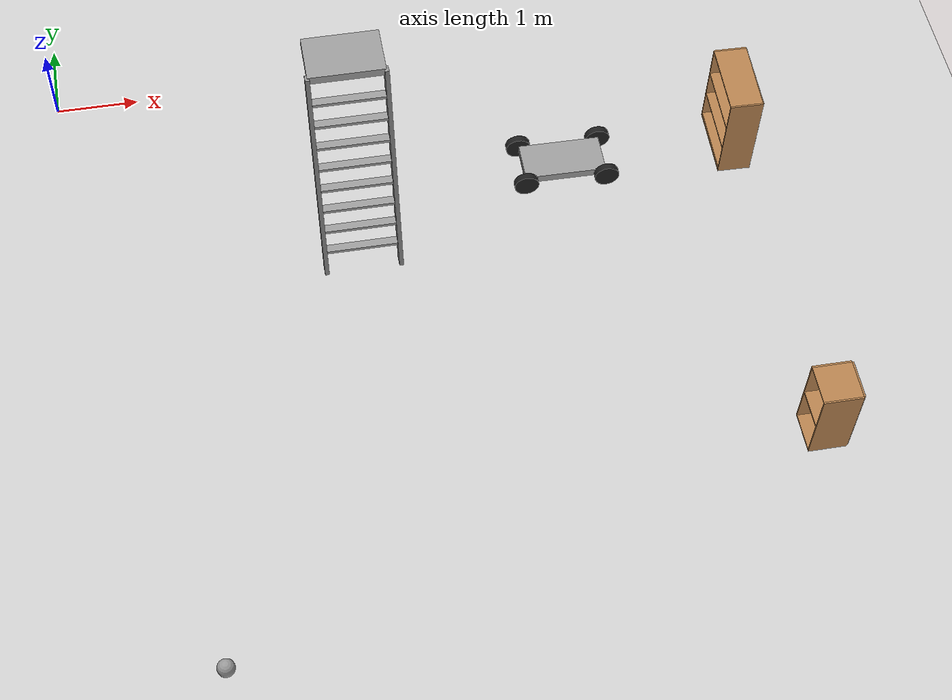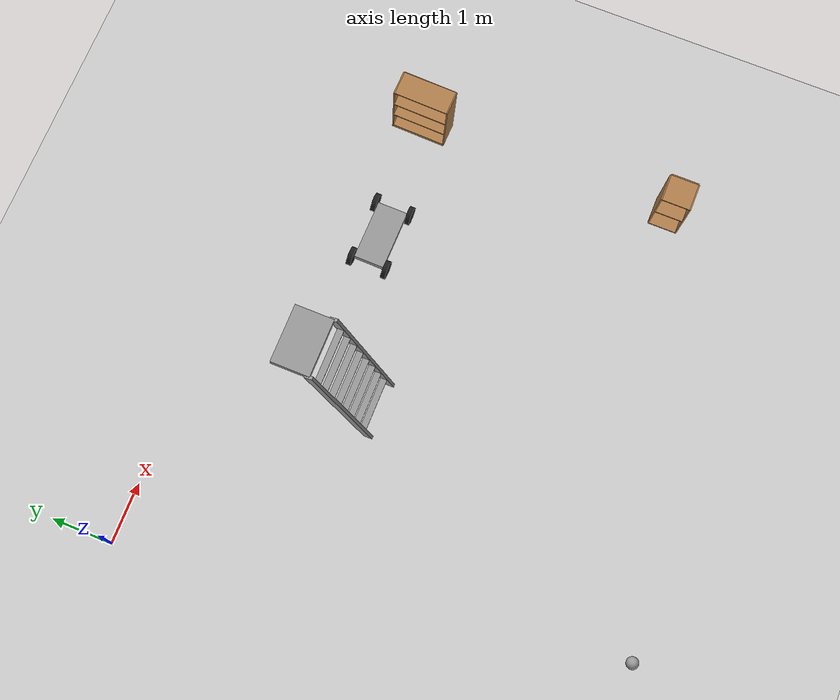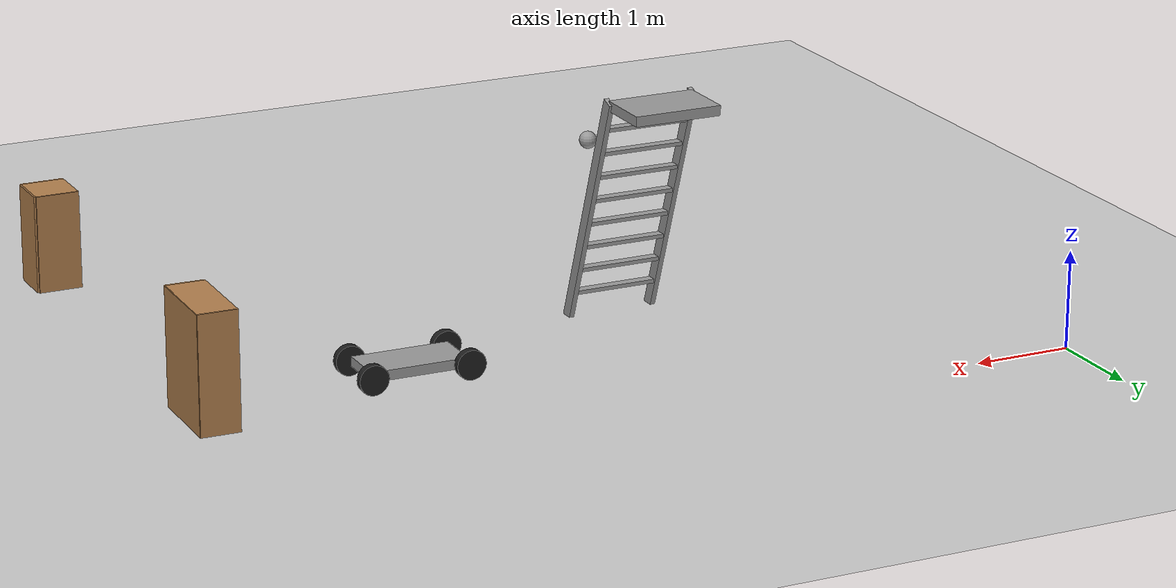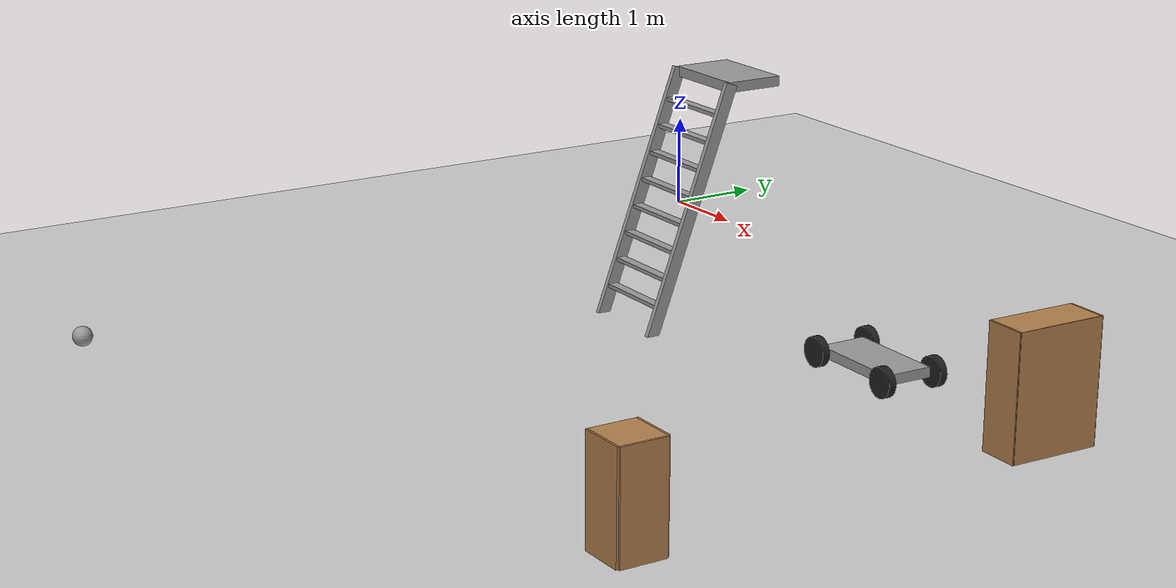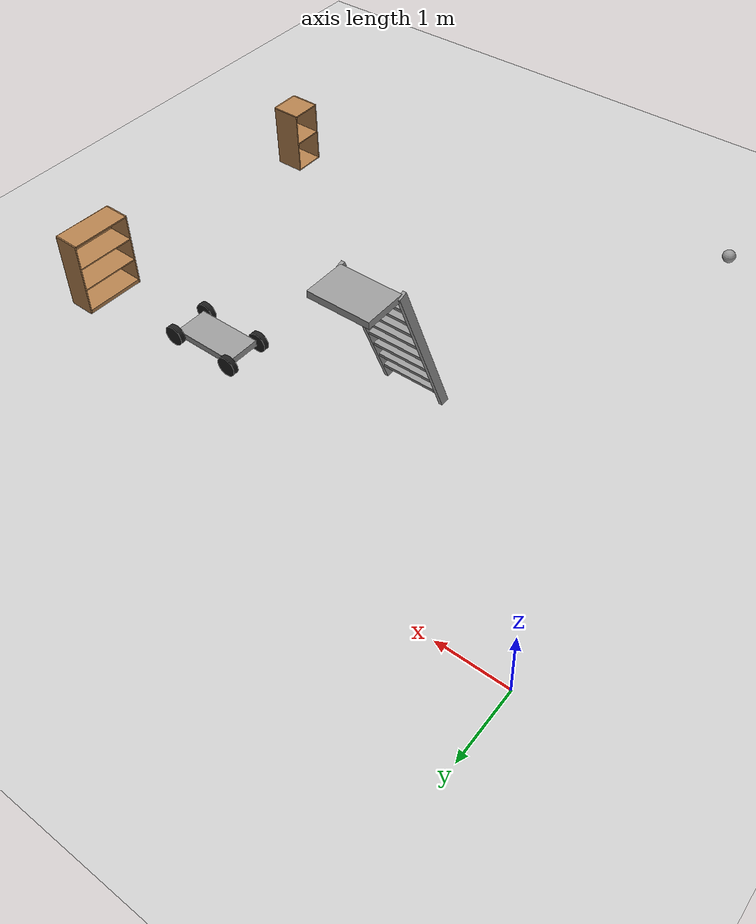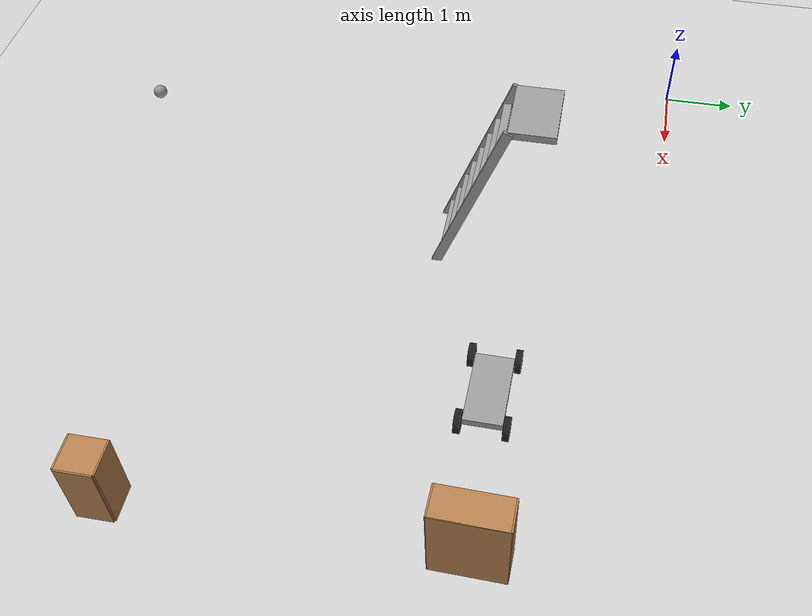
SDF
<sdf version="1.6">
 <world name="default">
  <model name="ground_plane">
   <static>1</static>
   <link name="link">
    <collision name="collision">
     <geometry><plane><normal>0 0 1</normal><size>100 100</size></plane></geometry>
     <surface><friction><ode><mu>100</mu><mu2>50</mu2></ode></friction></surface>
    </collision>
    <visual name="visual">
     <cast_shadows>0</cast_shadows>
     <geometry><plane><normal>0 0 1</normal><size>100 100</size></plane></geometry>
     <material>
      <script><uri>file://media/materials/scripts/gazebo.material</uri><name>Gazebo/Grey</name></script>
     </material>
    </visual>
   </link>
  </model>
  <model name="unit_sphere">
   <link name="link">
    <inertial>
     <mass>1</mass>
     <inertia><ixx>0.1</ixx><ixy>0</ixy><ixz>0</ixz><iyy>0.1</iyy><iyz>0</iyz><izz>0.1</izz></inertia>
    </inertial>
    <visual name="visual">
     <geometry><sphere><radius>0.1</radius></sphere></geometry>
     <material>
      <script><name>Gazebo/Grey</name><uri>file://media/materials/scripts/gazebo.material</uri></script>
      <shader type="pixel"><normal_map>__default__</normal_map></shader>
      <ambient>1 1 1 1</ambient>
      <diffuse>1 1 1 1</diffuse>
      <specular>1 1 1 1</specular>
      <emissive>1 1 1 1</emissive>
     </material>
    </visual>
    <collision name="collision">
     <geometry><sphere><radius>0.1</radius></sphere></geometry>
     <surface>
      <friction>
       <ode><mu>1</mu><mu2>1</mu2><fdir1>0 0 0</fdir1><slip1>0</slip1><slip2>0</slip2></ode>
       <torsional>
        <coefficient>1</coefficient>
        <patch_radius>0</patch_radius>
        <surface_radius>0</surface_radius>
        <use_patch_radius>1</use_patch_radius>
        <ode><slip>0</slip></ode>
       </torsional>
      </friction>
      <bounce><restitution_coefficient>0</restitution_coefficient><threshold>1e+06</threshold></bounce>
      <contact>
       <collide_without_contact>0</collide_without_contact>
       <collide_without_contact_bitmask>1</collide_without_contact_bitmask>
       <collide_bitmask>1</collide_bitmask>
       <ode>
        <soft_cfm>0</soft_cfm>
        <soft_erp>0.2</soft_erp>
        <kp>1e+13</kp>
        <kd>1</kd>
        <max_vel>0.01</max_vel>
        <min_depth>0</min_depth>
       </ode>
       <bullet>
        <split_impulse>1</split_impulse>
        <split_impulse_penetration_threshold>-0.01</split_impulse_penetration_threshold>
        <soft_cfm>0</soft_cfm>
        <soft_erp>0.2</soft_erp>
        <kp>1e+13</kp>
        <kd>1</kd>
       </bullet>
      </contact>
     </surface>
    </collision>
   </link>
   <static>0</static>
   <pose>1.31942 -7.94245 0.1 0 -0 0</pose>
  </model>
  <model name="bookshelf">
   <static>1</static>
   <link name="link">
    <inertial><mass>1</mass></inertial>
    <collision name="back">
     <pose>0 0.005 0.6 0 -0 0</pose>
     <geometry><box><size>0.9 0.01 1.2</size></box></geometry>
    </collision>
    <visual name="visual1">
     <pose>0 0.005 0.6 0 -0 0</pose>
     <geometry><box><size>0.9 0.01 1.2</size></box></geometry>
     <material>
      <script><uri>file://media/materials/scripts/gazebo.material</uri><name>Gazebo/Wood</name></script>
     </material>
    </visual>
    <collision name="left_side">
     <pose>0.45 -0.195 0.6 0 -0 0</pose>
     <geometry><box><size>0.02 0.4 1.2</size></box></geometry>
    </collision>
    <visual name="visual2">
     <pose>0.45 -0.195 0.6 0 -0 0</pose>
     <geometry><box><size>0.02 0.4 1.2</size></box></geometry>
     <material>
      <script><uri>file://media/materials/scripts/gazebo.material</uri><name>Gazebo/Wood</name></script>
     </material>
    </visual>
    <collision name="right_side">
     <pose>-0.45 -0.195 0.6 0 -0 0</pose>
     <geometry><box><size>0.02 0.4 1.2</size></box></geometry>
    </collision>
    <visual name="visual3">
     <pose>-0.45 -0.195 0.6 0 -0 0</pose>
     <geometry><box><size>0.02 0.4 1.2</size></box></geometry>
     <material>
      <script><uri>file://media/materials/scripts/gazebo.material</uri><name>Gazebo/Wood</name></script>
     </material>
    </visual>
    <collision name="bottom">
     <pose>0 -0.195 0.03 0 -0 0</pose>
     <geometry><box><size>0.88 0.4 0.06</size></box></geometry>
    </collision>
    <visual name="visual4">
     <pose>0 -0.195 0.03 0 -0 0</pose>
     <geometry><box><size>0.88 0.4 0.06</size></box></geometry>
     <material>
      <script><uri>file://media/materials/scripts/gazebo.material</uri><name>Gazebo/Wood</name></script>
     </material>
    </visual>
    <collision name="top">
     <pose>0 -0.195 1.19 0 -0 0</pose>
     <geometry><box><size>0.88 0.4 0.02</size></box></geometry>
    </collision>
    <visual name="visual5">
     <pose>0 -0.195 1.19 0 -0 0</pose>
     <geometry><box><size>0.88 0.4 0.02</size></box></geometry>
     <material>
      <script><uri>file://media/materials/scripts/gazebo.material</uri><name>Gazebo/Wood</name></script>
     </material>
    </visual>
    <collision name="low_shelf">
     <pose>0 -0.195 0.43 0 -0 0</pose>
     <geometry><box><size>0.88 0.4 0.02</size></box></geometry>
    </collision>
    <visual name="visual6">
     <pose>0 -0.195 0.43 0 -0 0</pose>
     <geometry><box><size>0.88 0.4 0.02</size></box></geometry>
     <material>
      <script><uri>file://media/materials/scripts/gazebo.material</uri><name>Gazebo/Wood</name></script>
     </material>
    </visual>
    <collision name="high_shelf">
     <pose>0 -0.195 0.8 0 -0 0</pose>
     <geometry><box><size>0.88 0.4 0.02</size></box></geometry>
    </collision>
    <visual name="visual7">
     <pose>0 -0.195 0.8 0 -0 0</pose>
     <geometry><box><size>0.88 0.4 0.02</size></box></geometry>
     <material>
      <script><uri>file://media/materials/scripts/gazebo.material</uri><name>Gazebo/Wood</name></script>
     </material>
    </visual>
   </link>
   <pose>8.44786 -1.83917 0 -6.5e-05 0.002648 -1.5955</pose>
  </model>
  <model name="cabinet">
   <static>1</static>
   <link name="cabinet_bottom_plate">
    <inertial>
     <pose>0 0 -1 0 -0 0</pose>
     <inertia><ixx>2.05</ixx><ixy>0</ixy><ixz>0</ixz><iyy>2.05</iyy><iyz>0</iyz><izz>2.05</izz></inertia>
     <mass>25</mass>
    </inertial>
    <collision name="cabinet_bottom_plate_geom">
     <pose>0 0 0.01 0 -0 0</pose>
     <geometry><box><size>0.45 0.45 0.02</size></box></geometry>
    </collision>
    <visual name="cabinet_bottom_plate_geom_visual">
     <pose>0 0 0.01 0 -0 0</pose>
     <geometry><box><size>0.45 0.45 0.02</size></box></geometry>
     <material>
      <script><uri>file://media/materials/scripts/gazebo.material</uri><name>Gazebo/Wood</name></script>
     </material>
    </visual>
    <collision name="cabinet_bottom_plate_geom_cabinet_back_plate">
     <pose>0.235 0 0.51 0 -0 0</pose>
     <geometry><box><size>0.02 0.45 1.02</size></box></geometry>
    </collision>
    <visual name="cabinet_bottom_plate_geom_cabinet_back_plate_visual">
     <pose>0.235 0 0.51 0 -0 0</pose>
     <geometry><box><size>0.02 0.45 1.02</size></box></geometry>
     <material>
      <script><uri>file://media/materials/scripts/gazebo.material</uri><name>Gazebo/Wood</name></script>
     </material>
    </visual>
    <collision name="cabinet_bottom_plate_geom_cabinet_left_plate">
     <pose>0 0.235 0.51 0 -0 0</pose>
     <geometry><box><size>0.45 0.02 1.02</size></box></geometry>
    </collision>
    <visual name="cabinet_bottom_plate_geom_cabinet_left_plate_visual">
     <pose>0 0.235 0.51 0 -0 0</pose>
     <geometry><box><size>0.45 0.02 1.02</size></box></geometry>
     <material>
      <script><uri>file://media/materials/scripts/gazebo.material</uri><name>Gazebo/Wood</name></script>
     </material>
    </visual>
    <collision name="cabinet_bottom_plate_geom_cabinet_middle_plate">
     <pose>0 0 0.51 0 -0 0</pose>
     <geometry><box><size>0.45 0.45 0.02</size></box></geometry>
    </collision>
    <visual name="cabinet_bottom_plate_geom_cabinet_middle_plate_visual">
     <pose>0 0 0.51 0 -0 0</pose>
     <geometry><box><size>0.45 0.45 0.02</size></box></geometry>
     <material>
      <script><uri>file://media/materials/scripts/gazebo.material</uri><name>Gazebo/Wood</name></script>
     </material>
    </visual>
    <collision name="cabinet_bottom_plate_geom_cabinet_right_plate">
     <pose>0 -0.235 0.51 0 -0 0</pose>
     <geometry><box><size>0.45 0.02 1.02</size></box></geometry>
    </collision>
    <visual name="cabinet_bottom_plate_geom_cabinet_right_plate_visual">
     <pose>0 -0.235 0.51 0 -0 0</pose>
     <geometry><box><size>0.45 0.02 1.02</size></box></geometry>
     <material>
      <script><uri>file://media/materials/scripts/gazebo.material</uri><name>Gazebo/Wood</name></script>
     </material>
    </visual>
    <collision name="cabinet_bottom_plate_geom_cabinet_top_plate">
     <pose>0 0 1.01 0 -0 0</pose>
     <geometry><box><size>0.45 0.45 0.02</size></box></geometry>
    </collision>
    <visual name="cabinet_bottom_plate_geom_cabinet_top_plate_visual">
     <pose>0 0 1.01 0 -0 0</pose>
     <geometry><box><size>0.45 0.45 0.02</size></box></geometry>
     <material>
      <script><uri>file://media/materials/scripts/gazebo.material</uri><name>Gazebo/Wood</name></script>
     </material>
    </visual>
   </link>
   <pose>8.26454 -6.11628 0 0 -0 0</pose>
  </model>
  <model name="cart_soft_suspension">
   <link name="chassis">
    <pose>0 0 0.15 0 -0 0</pose>
    <inertial>
     <pose>0.1 0 0 0 -0 0</pose>
     <mass>10</mass>
     <inertia>
      <ixx>0.216667</ixx>
      <iyy>0.841667</iyy>
      <izz>1.04167</izz>
      <ixy>0</ixy>
      <ixz>0</ixz>
      <iyz>0</iyz>
     </inertia>
    </inertial>
    <collision name="collision"><geometry><box><size>1 0.5 0.1</size></box></geometry></collision>
    <visual name="visual">
     <geometry><box><size>1 0.5 0.1</size></box></geometry>
     <material>
      <script><uri>file://media/materials/scripts/gazebo.material</uri><name>Gazebo/Grey</name></script>
     </material>
    </visual>
   </link>
   <link name="susp_front_right">
    <pose>0.5 -0.298 0.15 0 -0 0</pose>
    <inertial>
     <mass>0.5</mass>
     <inertia>
      <ixx>0.000208333</ixx>
      <iyy>0.000208333</iyy>
      <izz>0.000208333</izz>
      <ixy>0</ixy>
      <ixz>0</ixz>
      <iyz>0</iyz>
     </inertia>
    </inertial>
    <collision name="collision"><geometry><box><size>0.05 0.05 0.05</size></box></geometry></collision>
    <visual name="visual">
     <geometry><box><size>0.05 0.05 0.05</size></box></geometry>
     <material>
      <script><uri>file://media/materials/scripts/gazebo.material</uri><name>Gazebo/Black</name></script>
     </material>
    </visual>
   </link>
   <joint name="susp_front_right_prismatic" type="prismatic">
    <parent>chassis</parent>
    <child>susp_front_right</child>
    <axis>
     <xyz>0 0 -1</xyz>
     <limit><lower>-0.0375</lower><upper>0.0375</upper></limit>
     <dynamics>
      <damping>100</damping>
      <spring_stiffness>2500</spring_stiffness>
      <spring_reference>0.05</spring_reference>
     </dynamics>
     <use_parent_model_frame>0</use_parent_model_frame>
    </axis>
    <physics>
     <ode><implicit_spring_damper>1</implicit_spring_damper><limit><cfm>0</cfm><erp>0.2</erp></limit></ode>
    </physics>
   </joint>
   <link name="wheel_front_right">
    <pose>0.5 -0.298 0.15 -1.5708 0 0</pose>
    <inertial>
     <mass>0.5</mass>
     <inertia>
      <ixx>0.00307917</ixx>
      <iyy>0.00307917</iyy>
      <izz>0.005625</izz>
      <ixy>0</ixy>
      <ixz>0</ixz>
      <iyz>0</iyz>
     </inertia>
    </inertial>
    <collision name="collision">
     <geometry><cylinder><radius>0.15</radius><length>0.08</length></cylinder></geometry>
    </collision>
    <visual name="visual">
     <geometry><cylinder><radius>0.15</radius><length>0.08</length></cylinder></geometry>
     <material>
      <script><uri>file://media/materials/scripts/gazebo.material</uri><name>Gazebo/Black</name></script>
     </material>
    </visual>
   </link>
   <joint name="wheel_front_right_spin" type="revolute">
    <parent>susp_front_right</parent>
    <child>wheel_front_right</child>
    <axis>
     <xyz>0 0 1</xyz>
     <use_parent_model_frame>0</use_parent_model_frame>
     <limit><lower>-1e+16</lower><upper>1e+16</upper></limit>
     <dynamics><spring_reference>0</spring_reference><spring_stiffness>0</spring_stiffness></dynamics>
    </axis>
   </joint>
   <link name="susp_front_left">
    <pose>0.5 0.298 0.15 0 -0 0</pose>
    <inertial>
     <mass>0.5</mass>
     <inertia>
      <ixx>0.000208333</ixx>
      <iyy>0.000208333</iyy>
      <izz>0.000208333</izz>
      <ixy>0</ixy>
      <ixz>0</ixz>
      <iyz>0</iyz>
     </inertia>
    </inertial>
    <collision name="collision"><geometry><box><size>0.05 0.05 0.05</size></box></geometry></collision>
    <visual name="visual">
     <geometry><box><size>0.05 0.05 0.05</size></box></geometry>
     <material>
      <script><uri>file://media/materials/scripts/gazebo.material</uri><name>Gazebo/Black</name></script>
     </material>
    </visual>
   </link>
   <joint name="susp_front_left_prismatic" type="prismatic">
    <parent>chassis</parent>
    <child>susp_front_left</child>
    <axis>
     <xyz>0 0 -1</xyz>
     <limit><lower>-0.0375</lower><upper>0.0375</upper></limit>
     <dynamics>
      <damping>100</damping>
      <spring_stiffness>2500</spring_stiffness>
      <spring_reference>0.05</spring_reference>
     </dynamics>
     <use_parent_model_frame>0</use_parent_model_frame>
    </axis>
    <physics>
     <ode><implicit_spring_damper>1</implicit_spring_damper><limit><cfm>0</cfm><erp>0.2</erp></limit></ode>
    </physics>
   </joint>
   <link name="wheel_front_left">
    <pose>0.5 0.298 0.15 -1.5708 0 0</pose>
    <inertial>
     <mass>0.5</mass>
     <inertia>
      <ixx>0.00307917</ixx>
      <iyy>0.00307917</iyy>
      <izz>0.005625</izz>
      <ixy>0</ixy>
      <ixz>0</ixz>
      <iyz>0</iyz>
     </inertia>
    </inertial>
    <collision name="collision">
     <geometry><cylinder><radius>0.15</radius><length>0.08</length></cylinder></geometry>
    </collision>
    <visual name="visual">
     <geometry><cylinder><radius>0.15</radius><length>0.08</length></cylinder></geometry>
     <material>
      <script><uri>file://media/materials/scripts/gazebo.material</uri><name>Gazebo/Black</name></script>
     </material>
    </visual>
   </link>
   <joint name="wheel_front_left_spin" type="revolute">
    <parent>susp_front_left</parent>
    <child>wheel_front_left</child>
    <axis>
     <xyz>0 0 1</xyz>
     <use_parent_model_frame>0</use_parent_model_frame>
     <limit><lower>-1e+16</lower><upper>1e+16</upper></limit>
     <dynamics><spring_reference>0</spring_reference><spring_stiffness>0</spring_stiffness></dynamics>
    </axis>
   </joint>
   <link name="susp_rear_right">
    <pose>-0.5 -0.298 0.15 0 -0 0</pose>
    <inertial>
     <mass>0.5</mass>
     <inertia>
      <ixx>0.000208333</ixx>
      <iyy>0.000208333</iyy>
      <izz>0.000208333</izz>
      <ixy>0</ixy>
      <ixz>0</ixz>
      <iyz>0</iyz>
     </inertia>
    </inertial>
    <collision name="collision"><geometry><box><size>0.05 0.05 0.05</size></box></geometry></collision>
    <visual name="visual">
     <geometry><box><size>0.05 0.05 0.05</size></box></geometry>
     <material>
      <script><uri>file://media/materials/scripts/gazebo.material</uri><name>Gazebo/Black</name></script>
     </material>
    </visual>
   </link>
   <joint name="susp_rear_right_prismatic" type="prismatic">
    <parent>chassis</parent>
    <child>susp_rear_right</child>
    <axis>
     <xyz>0 0 -1</xyz>
     <limit><lower>-0.0375</lower><upper>0.0375</upper></limit>
     <dynamics>
      <damping>100</damping>
      <spring_stiffness>2500</spring_stiffness>
      <spring_reference>0.05</spring_reference>
     </dynamics>
     <use_parent_model_frame>0</use_parent_model_frame>
    </axis>
    <physics>
     <ode><implicit_spring_damper>1</implicit_spring_damper><limit><cfm>0</cfm><erp>0.2</erp></limit></ode>
    </physics>
   </joint>
   <link name="wheel_rear_right">
    <pose>-0.5 -0.298 0.15 -1.5708 0 0</pose>
    <inertial>
     <mass>0.5</mass>
     <inertia>
      <ixx>0.00307917</ixx>
      <iyy>0.00307917</iyy>
      <izz>0.005625</izz>
      <ixy>0</ixy>
      <ixz>0</ixz>
      <iyz>0</iyz>
     </inertia>
    </inertial>
    <collision name="collision">
     <geometry><cylinder><radius>0.15</radius><length>0.08</length></cylinder></geometry>
    </collision>
    <visual name="visual">
     <geometry><cylinder><radius>0.15</radius><length>0.08</length></cylinder></geometry>
     <material>
      <script><uri>file://media/materials/scripts/gazebo.material</uri><name>Gazebo/Black</name></script>
     </material>
    </visual>
   </link>
   <joint name="wheel_rear_right_spin" type="revolute">
    <parent>susp_rear_right</parent>
    <child>wheel_rear_right</child>
    <axis>
     <xyz>0 0 1</xyz>
     <use_parent_model_frame>0</use_parent_model_frame>
     <limit><lower>-1e+16</lower><upper>1e+16</upper></limit>
     <dynamics><spring_reference>0</spring_reference><spring_stiffness>0</spring_stiffness></dynamics>
    </axis>
   </joint>
   <link name="susp_rear_left">
    <pose>-0.5 0.298 0.15 0 -0 0</pose>
    <inertial>
     <mass>0.5</mass>
     <inertia>
      <ixx>0.000208333</ixx>
      <iyy>0.000208333</iyy>
      <izz>0.000208333</izz>
      <ixy>0</ixy>
      <ixz>0</ixz>
      <iyz>0</iyz>
     </inertia>
    </inertial>
    <collision name="collision"><geometry><box><size>0.05 0.05 0.05</size></box></geometry></collision>
    <visual name="visual">
     <geometry><box><size>0.05 0.05 0.05</size></box></geometry>
     <material>
      <script><uri>file://media/materials/scripts/gazebo.material</uri><name>Gazebo/Black</name></script>
     </material>
    </visual>
   </link>
   <joint name="susp_rear_left_prismatic" type="prismatic">
    <parent>chassis</parent>
    <child>susp_rear_left</child>
    <axis>
     <xyz>0 0 -1</xyz>
     <limit><lower>-0.0375</lower><upper>0.0375</upper></limit>
     <dynamics>
      <damping>100</damping>
      <spring_stiffness>2500</spring_stiffness>
      <spring_reference>0.05</spring_reference>
     </dynamics>
     <use_parent_model_frame>0</use_parent_model_frame>
    </axis>
    <physics>
     <ode><implicit_spring_damper>1</implicit_spring_damper><limit><cfm>0</cfm><erp>0.2</erp></limit></ode>
    </physics>
   </joint>
   <link name="wheel_rear_left">
    <pose>-0.5 0.298 0.15 -1.5708 0 0</pose>
    <inertial>
     <mass>0.5</mass>
     <inertia>
      <ixx>0.00307917</ixx>
      <iyy>0.00307917</iyy>
      <izz>0.005625</izz>
      <ixy>0</ixy>
      <ixz>0</ixz>
      <iyz>0</iyz>
     </inertia>
    </inertial>
    <collision name="collision">
     <geometry><cylinder><radius>0.15</radius><length>0.08</length></cylinder></geometry>
    </collision>
    <visual name="visual">
     <geometry><cylinder><radius>0.15</radius><length>0.08</length></cylinder></geometry>
     <material>
      <script><uri>file://media/materials/scripts/gazebo.material</uri><name>Gazebo/Black</name></script>
     </material>
    </visual>
   </link>
   <joint name="wheel_rear_left_spin" type="revolute">
    <parent>susp_rear_left</parent>
    <child>wheel_rear_left</child>
    <axis>
     <xyz>0 0 1</xyz>
     <use_parent_model_frame>0</use_parent_model_frame>
     <limit><lower>-1e+16</lower><upper>1e+16</upper></limit>
     <dynamics><spring_reference>0</spring_reference><spring_stiffness>0</spring_stiffness></dynamics>
    </axis>
   </joint>
   <pose>6.12066 -1.95193 0.037374 8.9e-05 -2.4e-05 -0.011484</pose>
  </model>
  <model name="ladder_70deg_0rails">
   <static>1</static>
   <link name="step0">
    <pose>0 0.097059 0.266667 0 -0 0</pose>
    <inertial>
     <mass>9.75482</mass>
     <inertia>
      <ixx>0.00957124</ixx>
      <iyy>0.65963</iyy>
      <izz>0.666842</izz>
      <ixy>0</ixy>
      <ixz>0</ixz>
      <iyz>0</iyz>
     </inertia>
    </inertial>
    <collision name="collision"><geometry><box><size>0.9 0.1016 0.0381</size></box></geometry></collision>
    <visual name="visual">
     <geometry><box><size>0.9 0.1016 0.0381</size></box></geometry>
     <material>
      <script><uri>file://media/materials/scripts/gazebo.material</uri><name>Gazebo/Grey</name></script>
     </material>
    </visual>
   </link>
   <link name="step1">
    <pose>0 0.194117 0.533333 0 -0 0</pose>
    <inertial>
     <mass>9.75482</mass>
     <inertia>
      <ixx>0.00957124</ixx>
      <iyy>0.65963</iyy>
      <izz>0.666842</izz>
      <ixy>0</ixy>
      <ixz>0</ixz>
      <iyz>0</iyz>
     </inertia>
    </inertial>
    <collision name="collision"><geometry><box><size>0.9 0.1016 0.0381</size></box></geometry></collision>
    <visual name="visual">
     <geometry><box><size>0.9 0.1016 0.0381</size></box></geometry>
     <material>
      <script><uri>file://media/materials/scripts/gazebo.material</uri><name>Gazebo/Grey</name></script>
     </material>
    </visual>
   </link>
   <link name="step2">
    <pose>0 0.291176 0.8 0 -0 0</pose>
    <inertial>
     <mass>9.75482</mass>
     <inertia>
      <ixx>0.00957124</ixx>
      <iyy>0.65963</iyy>
      <izz>0.666842</izz>
      <ixy>0</ixy>
      <ixz>0</ixz>
      <iyz>0</iyz>
     </inertia>
    </inertial>
    <collision name="collision"><geometry><box><size>0.9 0.1016 0.0381</size></box></geometry></collision>
    <visual name="visual">
     <geometry><box><size>0.9 0.1016 0.0381</size></box></geometry>
     <material>
      <script><uri>file://media/materials/scripts/gazebo.material</uri><name>Gazebo/Grey</name></script>
     </material>
    </visual>
   </link>
   <link name="step3">
    <pose>0 0.388235 1.06667 0 -0 0</pose>
    <inertial>
     <mass>9.75482</mass>
     <inertia>
      <ixx>0.00957124</ixx>
      <iyy>0.65963</iyy>
      <izz>0.666842</izz>
      <ixy>0</ixy>
      <ixz>0</ixz>
      <iyz>0</iyz>
     </inertia>
    </inertial>
    <collision name="collision"><geometry><box><size>0.9 0.1016 0.0381</size></box></geometry></collision>
    <visual name="visual">
     <geometry><box><size>0.9 0.1016 0.0381</size></box></geometry>
     <material>
      <script><uri>file://media/materials/scripts/gazebo.material</uri><name>Gazebo/Grey</name></script>
     </material>
    </visual>
   </link>
   <link name="step4">
    <pose>0 0.485294 1.33333 0 -0 0</pose>
    <inertial>
     <mass>9.75482</mass>
     <inertia>
      <ixx>0.00957124</ixx>
      <iyy>0.65963</iyy>
      <izz>0.666842</izz>
      <ixy>0</ixy>
      <ixz>0</ixz>
      <iyz>0</iyz>
     </inertia>
    </inertial>
    <collision name="collision"><geometry><box><size>0.9 0.1016 0.0381</size></box></geometry></collision>
    <visual name="visual">
     <geometry><box><size>0.9 0.1016 0.0381</size></box></geometry>
     <material>
      <script><uri>file://media/materials/scripts/gazebo.material</uri><name>Gazebo/Grey</name></script>
     </material>
    </visual>
   </link>
   <link name="step5">
    <pose>0 0.582352 1.6 0 -0 0</pose>
    <inertial>
     <mass>9.75482</mass>
     <inertia>
      <ixx>0.00957124</ixx>
      <iyy>0.65963</iyy>
      <izz>0.666842</izz>
      <ixy>0</ixy>
      <ixz>0</ixz>
      <iyz>0</iyz>
     </inertia>
    </inertial>
    <collision name="collision"><geometry><box><size>0.9 0.1016 0.0381</size></box></geometry></collision>
    <visual name="visual">
     <geometry><box><size>0.9 0.1016 0.0381</size></box></geometry>
     <material>
      <script><uri>file://media/materials/scripts/gazebo.material</uri><name>Gazebo/Grey</name></script>
     </material>
    </visual>
   </link>
   <link name="step6">
    <pose>0 0.679411 1.86667 0 -0 0</pose>
    <inertial>
     <mass>9.75482</mass>
     <inertia>
      <ixx>0.00957124</ixx>
      <iyy>0.65963</iyy>
      <izz>0.666842</izz>
      <ixy>0</ixy>
      <ixz>0</ixz>
      <iyz>0</iyz>
     </inertia>
    </inertial>
    <collision name="collision"><geometry><box><size>0.9 0.1016 0.0381</size></box></geometry></collision>
    <visual name="visual">
     <geometry><box><size>0.9 0.1016 0.0381</size></box></geometry>
     <material>
      <script><uri>file://media/materials/scripts/gazebo.material</uri><name>Gazebo/Grey</name></script>
     </material>
    </visual>
   </link>
   <link name="step7">
    <pose>0 0.77647 2.13333 0 -0 0</pose>
    <inertial>
     <mass>9.75482</mass>
     <inertia>
      <ixx>0.00957124</ixx>
      <iyy>0.65963</iyy>
      <izz>0.666842</izz>
      <ixy>0</ixy>
      <ixz>0</ixz>
      <iyz>0</iyz>
     </inertia>
    </inertial>
    <collision name="collision"><geometry><box><size>0.9 0.1016 0.0381</size></box></geometry></collision>
    <visual name="visual">
     <geometry><box><size>0.9 0.1016 0.0381</size></box></geometry>
     <material>
      <script><uri>file://media/materials/scripts/gazebo.material</uri><name>Gazebo/Grey</name></script>
     </material>
    </visual>
   </link>
   <link name="landing">
    <pose>0 1.17353 2.4 0 -0 0</pose>
    <inertial>
     <mass>57.6072</mass>
     <inertia><ixx>1.73518</ixx><iyy>3.89545</iyy><izz>5.6167</izz><ixy>0</ixy><ixz>0</ixz><iyz>0</iyz></inertia>
    </inertial>
    <collision name="collision"><geometry><box><size>0.9 0.6 0.1016</size></box></geometry></collision>
    <visual name="visual">
     <geometry><box><size>0.9 0.6 0.1016</size></box></geometry>
     <material>
      <script><uri>file://media/materials/scripts/gazebo.material</uri><name>Gazebo/Grey</name></script>
     </material>
    </visual>
   </link>
   <link name="left_side_wall">
    <pose>-0.45 0.436764 1.2 1.22173 -0 0</pose>
    <collision name="collision"><geometry><box><size>0.0508 2.63403 0.13</size></box></geometry></collision>
    <visual name="visual">
     <geometry><box><size>0.0508 2.63403 0.13</size></box></geometry>
     <material>
      <script><uri>file://media/materials/scripts/gazebo.material</uri><name>Gazebo/Grey</name></script>
     </material>
    </visual>
   </link>
   <link name="right_side_wall">
    <pose>0.45 0.436764 1.2 1.22173 -0 0</pose>
    <collision name="collision"><geometry><box><size>0.0508 2.63403 0.13</size></box></geometry></collision>
    <visual name="visual">
     <geometry><box><size>0.0508 2.63403 0.13</size></box></geometry>
     <material>
      <script><uri>file://media/materials/scripts/gazebo.material</uri><name>Gazebo/Grey</name></script>
     </material>
    </visual>
   </link>
   <pose>3.48796 -2.9978 0 0 -0 0</pose>
  </model>
 </world>
</sdf>
